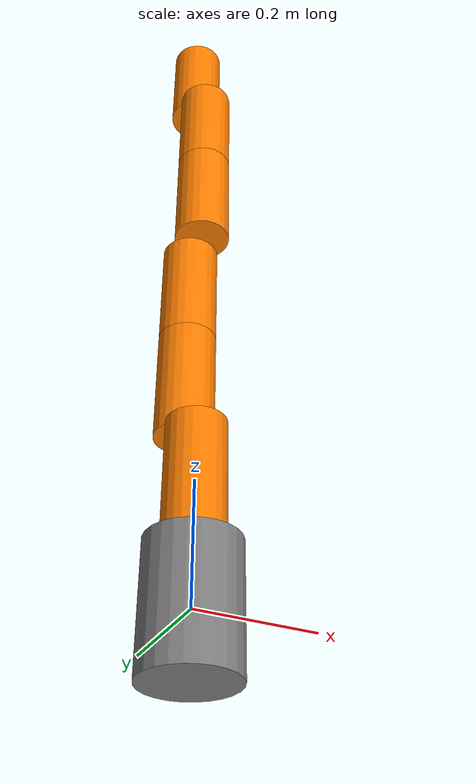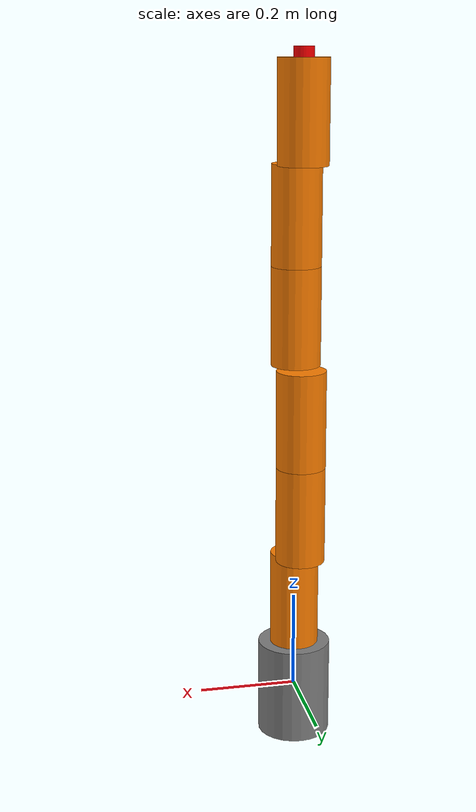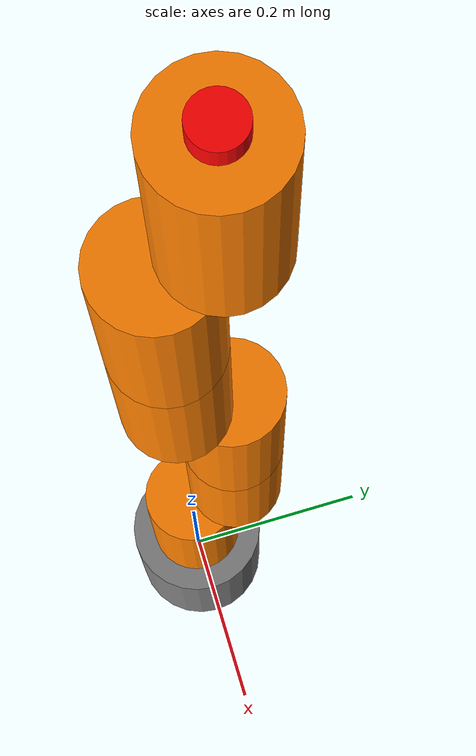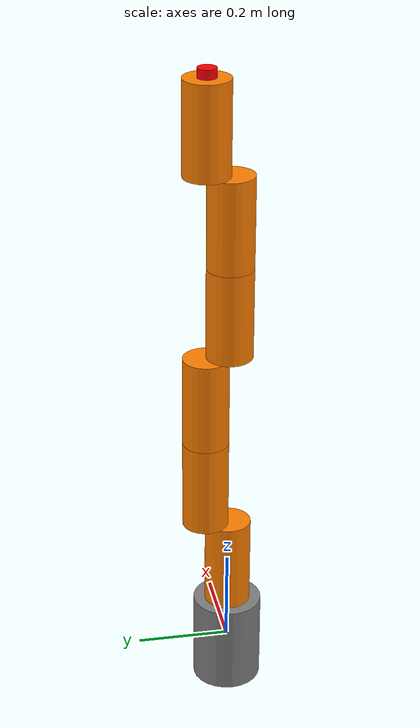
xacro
<?xml version="1.0"?>

<robot name="kuka" xmlns:xacro="http://wiki.ros.org/xacro">
    <xacro:include filename="$(find kuka_model_pkg)/urdf/kuka_macro.xacro" />

    <xacro:base_link_macro
        base_link_name="base_link">
    </xacro:base_link_macro>

    <xacro:kuka_joint
        name="joint1"
        parent="base_link"
        child="link1"
        effort="176"
        vel="98"
        limit="170">
        <origin xyz="0 0 ${base_length/2}" />
        <axis xyz="0 0 1"/>
    </xacro:kuka_joint>

    <xacro:kuka_link name="link1">
        <origin xyz="0 0 ${link_length/2}" rpy="0 0 0"/>
    </xacro:kuka_link>

    <xacro:kuka_joint
        name="joint2"
        parent="link1"
        child="link2"
        effort="176"
        vel="98"
        limit="120">
        <origin xyz="0 ${link_radius} ${link_length}"/>
        <axis xyz="0 1 0"/>
    </xacro:kuka_joint>

    <xacro:kuka_link name="link2">
        <origin xyz="0 0 ${link_length/2}" rpy="0 0 0"/>
    </xacro:kuka_link>

    <xacro:kuka_joint
        name="joint3"
        parent="link2"
        child="link3"
        effort="110"
        vel="100"
        limit="170">
        <origin xyz="0 0 ${link_length}" />
        <axis xyz="0 0 1"/>
        </xacro:kuka_joint>

    <xacro:kuka_link name="link3">
        <origin xyz="0 0 ${link_length/2}" rpy="0 0 0"/>
    </xacro:kuka_link>

    <xacro:kuka_joint
        name="joint4"
        parent="link3"
        child="link4"
        effort="110"
        vel="130"
        limit="120">
        <origin xyz="0 0 ${link_length}" />
        <axis xyz="0 -1 0"/>
    </xacro:kuka_joint>

    <xacro:kuka_link name="link4">
        <origin xyz="0 -${link_radius} ${link_length/2}" rpy="0 0 0"/>
    </xacro:kuka_link>

    <xacro:kuka_joint
        name="joint5"
        parent="link4"
        child="link5"
        effort="110"
        vel="140"
        limit="170">
        <origin xyz="0 -${link_radius} ${link_length}" />
        <axis xyz="0 0 1"/>
    </xacro:kuka_joint>

    <xacro:kuka_link name="link5">
        <origin xyz="0 0 ${link_length/2}" rpy="0 0 0"/>
    </xacro:kuka_link>

    <xacro:kuka_joint
        name="joint6"
        parent="link5"
        child="link6"
        effort="40"
        vel="180"
        limit="120">
        <origin xyz="0 ${link_radius} ${link_length}" />
        <axis xyz="0 1 0"/>
    </xacro:kuka_joint>

    <xacro:kuka_link name="link6">
        <origin xyz="0 0 ${link_length/2}" rpy="0 0 0"/>
    </xacro:kuka_link>

    <xacro:kuka_joint
        name="joint7"
        parent="link6"
        child="wrist"
        effort="40"
        vel="180"
        limit="175">
        <origin xyz="0 0 ${link_length}" />
        <axis xyz="0 0 1"/>
    </xacro:kuka_joint>

    <xacro:kuka_wrist name="wrist">
        <origin xyz="0 0 ${wrist_length/2}" rpy="0 0 0"/>
    </xacro:kuka_wrist>

</robot>

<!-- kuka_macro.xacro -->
<robot name="kuka_macro" xmlns:xacro="http://wiki.ros.org/xacro">

    <xacro:property name="base_length" value="0.2" />
    <xacro:property name="base_radius" value="0.075" />
    <xacro:property name="link_length" value="0.2" />
    <xacro:property name="link_radius" value="0.05" />
    <xacro:property name="wrist_length" value="0.02" />
    <xacro:property name="wrist_radius" value="0.02" />

    <xacro:property name="base_geometry">
        <geometry>
            <cylinder length="${base_length}" radius="${base_radius}"/>
        </geometry>
    </xacro:property>

    <xacro:property name="link_geometry">
        <geometry>
            <cylinder length="${link_length}" radius="${link_radius}"/>
        </geometry>
    </xacro:property>

    <xacro:property name="wrist_geometry">
        <geometry>
            <cylinder length="${wrist_length}" radius="${wrist_radius}"/>
        </geometry>
    </xacro:property>

    <xacro:macro name="base_link_macro" params="base_link_name">
        <link name="${base_link_name}">
            <visual>
                <xacro:insert_block name="base_geometry" />
                <origin rpy="0 0 0" xyz="0 0 0"/>
                <material name="grey">
                    <color rgba="0.5 0.5 0.5 1"/>
                </material>
            </visual>
            <collision>
                <xacro:insert_block name="base_geometry" />
                <origin rpy="0 0 0" xyz="0 0 0"/>
            </collision>
        </link>
    </xacro:macro>

    <!-- Since all KUKA joints are revolute, it's not needed to specify the
        joint type as a parameter -->
    <xacro:macro name="kuka_joint" params="name parent child *origin *axis effort vel limit">
        <joint name="${name}" type="revolute">
            <parent link="${parent}" />
            <child link="${child}" />
            <xacro:insert_block name="origin" />
            <xacro:insert_block name="axis" />
            <limit effort="${effort}" velocity="${vel}" lower="-${radians(limit)}" upper="${radians(limit)}"/>
        </joint>
    </xacro:macro>

    <xacro:macro name="kuka_link" params="name *origin">
        <link name="${name}">
            <visual>
                <xacro:insert_block name="link_geometry" />
                <xacro:insert_block name="origin" />
                <material name="orange">
                    <color rgba="1 0.5 0 1"/>
                </material>
            </visual>
            <collision>
                <xacro:insert_block name="link_geometry" />
                <xacro:insert_block name="origin" />
            </collision>
        </link>
    </xacro:macro>

    <xacro:macro name="kuka_wrist" params="name *origin">
        <link name="${name}">
            <visual>
                <xacro:insert_block name="wrist_geometry" />
                <xacro:insert_block name="origin" />
                <material name="red">
                    <color rgba="1 0 0 1"/>
                </material>
            </visual>
            <collision>
                <xacro:insert_block name="wrist_geometry" />
                <xacro:insert_block name="origin" />
            </collision>
        </link>
    </xacro:macro>

</robot>
